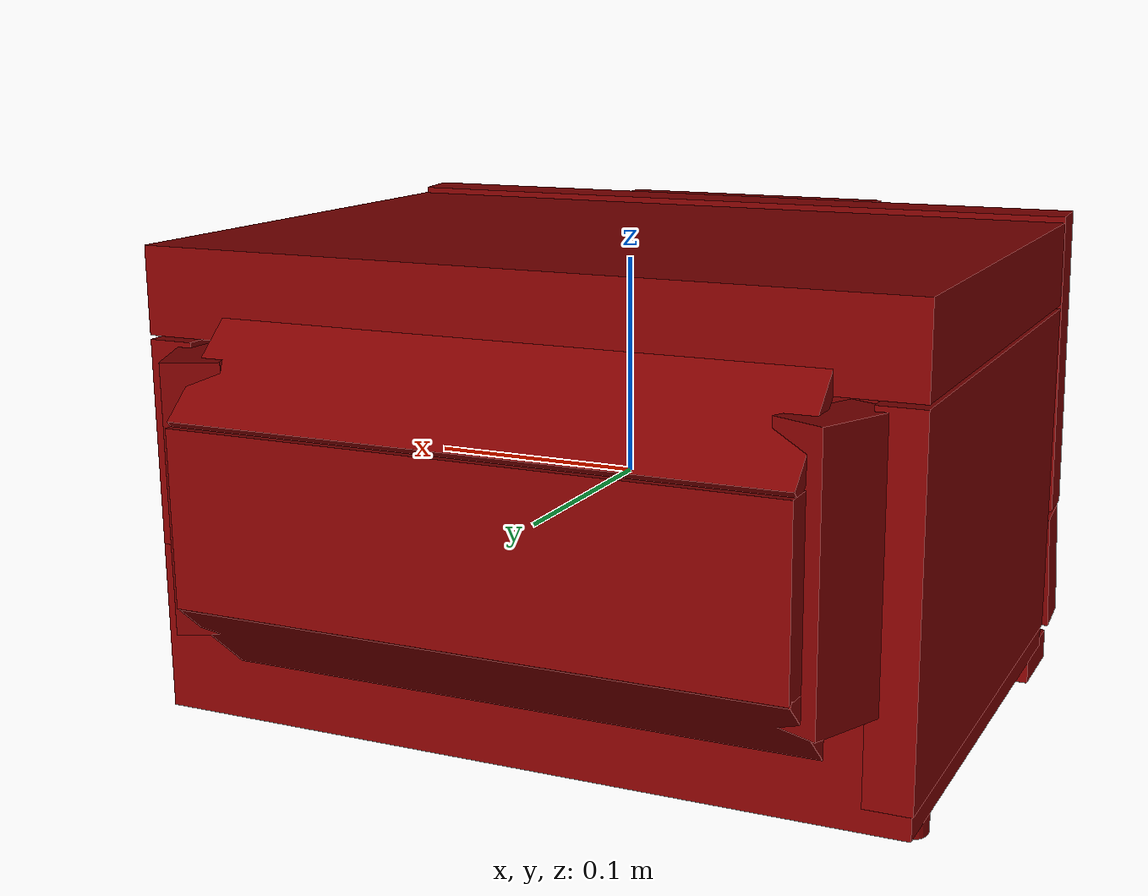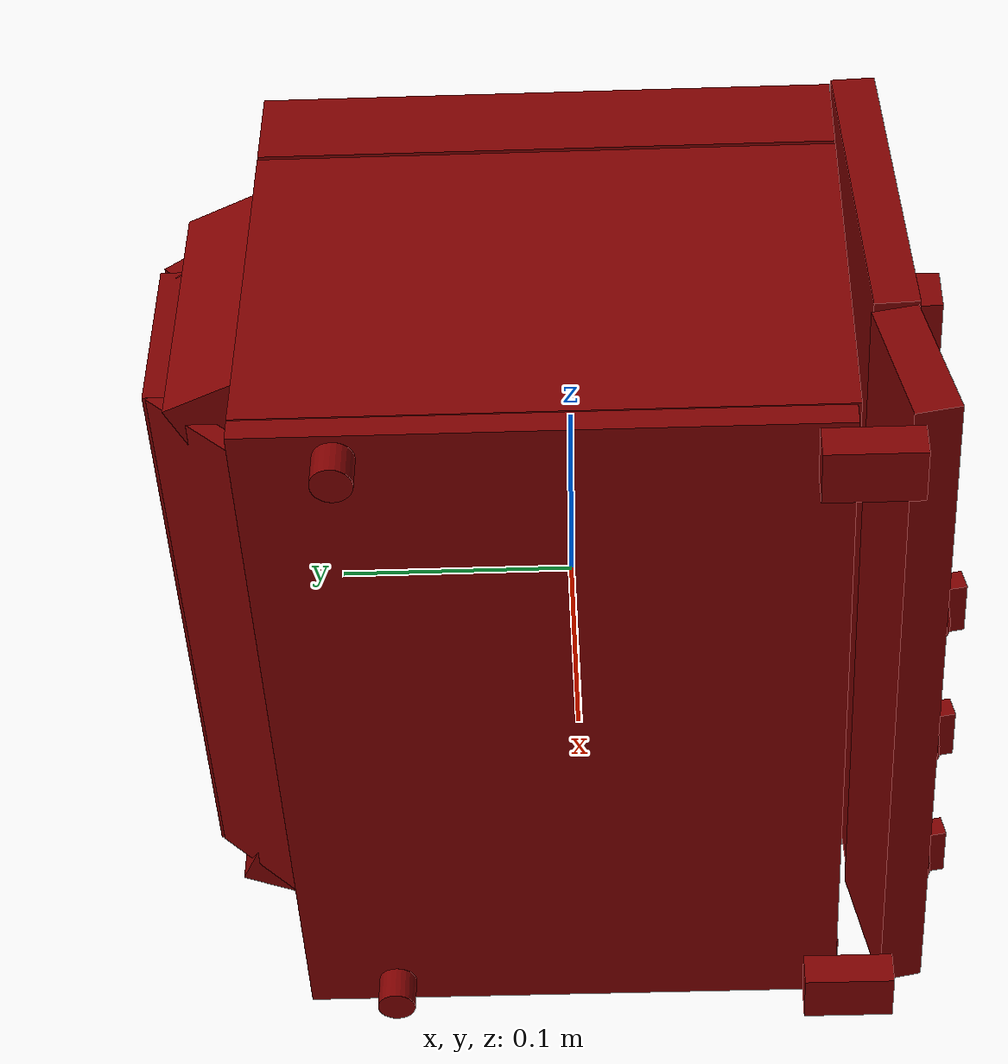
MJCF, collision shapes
<?xml version='1.0' encoding='UTF-8'?>
<mujoco model="model">
  <option timestep="0.002" gravity="0.0 0.0 -9.81"/>
  <compiler angle="radian"/>
  <asset>
    <mesh file="visuals/door.obj" name="door_vis"/>
    <mesh file="visuals/knob_function.obj" name="knob_function_vis"/>
    <mesh file="visuals/knob_temp.obj" name="knob_temp_vis"/>
    <mesh file="visuals/knob_time.obj" name="knob_time_vis"/>
    <mesh file="visuals/rack0.obj" name="rack0_vis"/>
    <mesh file="visuals/Body001.obj" name="Body001_vis"/>
    <mesh file="visuals/window.obj" name="window_vis"/>
    <texture file="visuals/T_BC001.png" name="Body001_material" type="2d"/>
    <material name="Body001_material" rgba="1 1 1 1.0" texture="Body001_material" shininess="0.1" specular="4"/>
    <texture file="visuals/T_BC001.png" name="door_material" type="2d"/>
    <material name="door_material" rgba="1 1 1 1.0" texture="door_material" shininess="0.1" specular="4"/>
    <material name="window_material" rgba="0.042244430631399155 0.042244430631399155 0.042244430631399155 0.800000011920929" shininess="0.4472135901451111" specular="0.3103448502657381"/>
    <texture file="visuals/T_BC001.png" name="knob_function_material" type="2d"/>
    <material name="knob_function_material" rgba="1 1 1 1.0" texture="knob_function_material" shininess="0.1" specular="4"/>
    <texture file="visuals/T_BC001.png" name="knob_temp_material" type="2d"/>
    <material name="knob_temp_material" rgba="1 1 1 1.0" texture="knob_temp_material" shininess="0.1" specular="4"/>
    <texture file="visuals/T_BC001.png" name="knob_time_material" type="2d"/>
    <material name="knob_time_material" rgba="1 1 1 1.0" texture="knob_time_material" shininess="0.1" specular="4"/>
    <texture file="visuals/T_BC001.png" name="rack0_material" type="2d"/>
    <material name="rack0_material" rgba="1 1 1 1.0" texture="rack0_material" shininess="0.1" specular="4"/>
  </asset>
  <default>
    <default class="visual">
      <geom conaffinity="0" contype="0" group="1" type="mesh"/>
    </default>
    <default class="collision">
      <geom group="0" rgba="0.5 0 0 0.5"/>
    </default>
    <default class="spawn">
      <geom group="0" rgba="1 1 1 0.5" contype="0" conaffinity="0"/>
      <site group="0" rgba="1 1 1 0.5"/>
    </default>
    <default class="region">
      <geom group="1" conaffinity="0" contype="0" rgba="0 1 0 0"/>
    </default>
  </default>
  <worldbody>
    <body>
      <body name="object">
        <geom mesh="Body001_vis" type="mesh" solimp="0.998 0.998 0.001" solref="0.001 1" friction="0.95 0.3 0.1" class="visual" material="Body001_material"/>
        <geom class="collision" type="box" pos="0.00000000 0.00454639 0.09186430" size="0.17422641813755035 0.11989676207304001 0.01969284750521183" quat="1.0 0.0 0.0 0.0"/>
        <geom class="collision" type="box" pos="0.16372624 0.00454639 -0.00998690" size="0.010500204749405384 0.11989676207304001 0.08027175068855286" quat="1.0 0.0 0.0 0.0"/>
        <geom class="collision" type="box" pos="-0.16384327 0.00454639 -0.00998690" size="0.010383167304098606 0.11989676207304001 0.08027175068855286" quat="1.0 0.0 0.0 0.0"/>
        <geom class="collision" type="box" pos="0.00026303 0.00530188 -0.06178262" size="0.17396342754364014 0.11914128065109253 0.03866548091173172" quat="1.0 0.0 0.0 0.0"/>
        <geom class="collision" type="box" pos="0.00027192 -0.13789151 -0.06509357" size="0.17397229373455048 0.009611217305064201 0.030262786895036697" quat="0.9950397610664368 -0.09947779029607773 -0.0 0.0"/>
        <geom class="collision" type="box" pos="0.16190234 -0.11895952 -0.10807209" size="0.012324108742177486 0.01985364407300949 0.007506381254643202" quat="1.0 0.0 0.0 0.0"/>
        <geom class="collision" type="box" pos="-0.15917262 -0.11895952 -0.10807209" size="0.012332997284829617 0.01985364407300949 0.007506381254643202" quat="1.0 0.0 0.0 0.0"/>
        <geom class="collision" type="box" pos="-0.00105973 0.14197794 0.00400564" size="0.13637468218803406 0.02494446374475956 0.03912200778722763" quat="1.0 0.0 0.0 0.0"/>
        <geom class="collision" type="cylinder" pos="0.16110916 0.08433951 -0.10768552" size="0.008421658538281918 0.007892950437963009" quat="1.0 0.0 0.0 0.0"/>
        <geom class="collision" type="cylinder" pos="-0.16214213 0.08433951 -0.10768552" size="0.008421658538281918 0.007892950437963009" quat="1.0 0.0 0.0 0.0"/>
        <geom class="collision" type="box" pos="0.14802332 0.00614825 -0.00413974" size="0.006788521073758602 0.11312271654605865 0.0031250808387994766" quat="1.0 0.0 0.0 0.0"/>
        <geom class="collision" type="box" pos="-0.14758937 0.00614825 -0.00413974" size="0.006788522470742464 0.11312273889780045 0.0031250815372914076" quat="1.0 0.0 0.0 0.0"/>
        <geom class="collision" type="box" pos="-0.00105973 0.14194906 0.06115457" size="0.13637468218803406 0.004142944701015949 0.02787165716290474" quat="0.9133381247520447 0.40720197558403015 0.0 0.0"/>
        <geom class="collision" type="box" pos="-0.00105973 0.14194906 -0.05169884" size="0.13637468218803406 0.004142944701015949 0.02787165716290474" quat="0.9133381247520447 -0.40720197558403015 -0.0 0.0"/>
        <geom class="collision" type="box" pos="0.14246474 0.13168808 0.00809397" size="0.012568509206175804 0.021317845210433006 0.05987899377942085" quat="0.9765339493751526 0.0 0.0 0.21536359190940857"/>
        <geom class="collision" type="box" pos="-0.14191812 0.13168808 0.00809397" size="0.012568509206175804 0.021317845210433006 0.05987899377942085" quat="0.9765338897705078 0.0 -0.0 -0.21536366641521454"/>
        <geom class="collision" type="box" pos="0.00013076 0.06055488 0.06369445" size="0.15465861558914185 0.06333073228597641 0.0027239753399044275" quat="0.9947561621665955 -0.10227528214454651 -0.0 0.0"/>
        <body name="door">
          <joint axis="1.0 0.0 0.0" pos="0.00000194 -0.13934473 -0.03152197" limited="true" name="door_joint" range="0.0 1.5707963267948966" type="hinge" damping="1" frictionloss="1" armature=".01" stiffness="0.15" springref="-0.5"/>
          <geom mesh="door_vis" type="mesh" solimp="0.998 0.998 0.001" solref="0.001 1" friction="0.95 0.3 0.1" class="visual" material="door_material"/>
          <geom class="collision" type="box" pos="-0.00000000 -0.12925407 0.04116626" size="0.17422643303871155 0.009200799278914928 0.07372124493122101" quat="0.9996618032455444 -0.026004696264863014 -5.774202508326945e-18 7.922750952188083e-25" name="door_main"/>
          <geom class="collision" type="box" pos="0.00083568 -0.15774139 0.10138644" size="0.0694253221154213 0.009549472481012344 0.011218705214560032" quat="1.0 0.0 0.0 0.0" name="door_handle_main"/>
          <geom class="collision" type="box" pos="0.06155251 -0.14160166 0.10169731" size="0.003388055134564638 0.006360279396176338 0.0032590227201581" quat="1.0 0.0 0.0 0.0"/>
          <geom class="collision" type="box" pos="-0.05838412 -0.14160166 0.10169731" size="0.003388055134564638 0.006360279396176338 0.0032590227201581" quat="1.0 0.0 0.0 0.0"/>
          <body name="window">
            <geom mesh="window_vis" type="mesh" solimp="0.998 0.998 0.001" solref="0.001 1" friction="0.95 0.3 0.1" class="visual" material="window_material"/>
            <geom class="collision" type="box" pos="0.00011264 -0.13388411 0.03165633" size="0.12217236310243607 0.002058350248262286 0.033491116017103195" quat="0.9996618032455444 -0.026004696264863014 -5.774202508326945e-18 7.922750952188083e-25"/>
          </body>
        </body>
        <body name="knob_function">
          <joint axis="0.0 0.9809496402740479 -0.19426223635673523" pos="0.04245225 -0.15536430 -0.06103563" limited="true" name="knob_function_joint" range="0.0 4.71238898038469" type="hinge" damping="0.05" frictionloss="0.75" armature="1"/>
          <geom mesh="knob_function_vis" type="mesh" solimp="0.998 0.998 0.001" solref="0.001 1" friction="0.95 0.3 0.1" class="visual" material="knob_function_material"/>
          <geom class="collision" type="box" pos="0.04268831 -0.15842935 -0.06060682" size="0.004592180252075195 0.00482372660189867 0.012629842385649681" quat="0.7040730714797974 -0.06543001532554626 0.7040731310844421 -0.06543001532554626" name="knob_function_main" friction="100 0.5 0.01"/>
          <geom class="collision" type="cylinder" pos="0.04260658 -0.15127008 -0.06202681" size="0.014042610302567482 0.0029085823334753513" quat="0.7717979550361633 0.6358678340911865 0.0 0.0" friction="100 0.5 0.01"/>
        </body>
        <body name="knob_temp">
          <joint axis="0.0 0.9809496402740479 -0.19426223635673523" pos="-0.03671469 -0.15562297 -0.06234178" limited="true" name="knob_temp_joint" range="0.0 4.71238898038469" type="hinge" damping="0.05" frictionloss="0.75" armature="1"/>
          <geom mesh="knob_temp_vis" type="mesh" solimp="0.998 0.998 0.001" solref="0.001 1" friction="0.95 0.3 0.1" class="visual" material="knob_temp_material"/>
          <geom class="collision" type="cylinder" pos="-0.03653594 -0.15139068 -0.06307401" size="0.013990923762321472 0.0029015822801738977" quat="0.7717979550361633 0.6358678340911865 0.0 0.0" friction="100 0.5 0.01"/>
          <geom class="collision" type="box" pos="-0.03695536 -0.15855091 -0.06236469" size="0.004592180252075195 0.0049474104307591915 0.012629842385649681" quat="0.7040730714797974 -0.06543001532554626 0.7040731310844421 -0.06543001532554626" name="knob_temp_main" friction="100 0.5 0.01"/>
        </body>
        <body name="knob_time">
          <joint axis="0.0 0.9809496402740479 -0.19426223635673523" pos="0.12134853 -0.15528671 -0.06064378" limited="true" name="knob_time_joint" range="0.0 4.71238898038469" type="hinge" damping="0.05" frictionloss="0.75" armature="1"/>
          <geom mesh="knob_time_vis" type="mesh" solimp="0.998 0.998 0.001" solref="0.001 1" friction="0.95 0.3 0.1" class="visual" material="knob_time_material"/>
          <geom class="collision" type="cylinder" pos="0.12156224 -0.15113064 -0.06163143" size="0.014112585224211216 0.002918058540672064" quat="0.7717979550361633 0.6358678340911865 0.0 0.0" friction="100 0.5 0.01"/>
          <geom class="collision" type="box" pos="0.12207682 -0.15850806 -0.06059207" size="0.004592180252075195 0.004903800319880247 0.012629842385649681" quat="0.7040730714797974 -0.06543001532554626 0.7040731310844421 -0.06543001532554626" name="knob_time_main" friction="100 0.5 0.01"/>
        </body>
        <body name="rack0">
          <geom class="region" name="reg_rack0" type="box" pos="0.0004542299999999999 -0.030131610000000003 0.035759645" size="0.13640724 0.07480375 0.023174735000000002"/>
          <joint axis="0.0 -1.0 0.0" pos="0.00100564 -0.02901310 0.00775973" limited="true" name="rack0_joint" range="0.0 0.15" type="slide" damping="1" frictionloss="1" armature=".01" stiffness="0.05"/>
          <geom mesh="rack0_vis" type="mesh" solimp="0.998 0.998 0.001" solref="0.001 1" friction="0.95 0.3 0.1" class="visual" material="rack0_material"/>
          <geom class="collision" type="box" pos="0.00103343 -0.02874543 0.00365988" size="0.1484881490468979 0.08274929970502853 0.0039691743440926075" quat="1.0 0.0 0.0 0.0"/>
        </body>
        <geom class="region" name="reg_int" type="box" pos="0.0026077700000000092 -8.165000000000255e-05 0.013150335" size="0.1342537 0.11184065 0.031590795000000005"/>
        <geom class="region" name="reg_main" type="box" pos="-5.0000000112460086e-09 0.01392431999999999 1.1520000000000974e-05" size="0.175226435 0.15399809 0.11658999"/>
      </body>
    </body>
  </worldbody>
  <actuator>
    <motor name="door_joint_actuator" joint="door_joint" gear="50"/>
    <motor name="knob_function_joint_actuator" joint="knob_function_joint" gear="50"/>
    <motor name="knob_temp_joint_actuator" joint="knob_temp_joint" gear="50"/>
    <motor name="knob_time_joint_actuator" joint="knob_time_joint" gear="50"/>
    <motor name="rack0_joint_actuator" joint="rack0_joint" gear="50"/>
  </actuator>
</mujoco>
